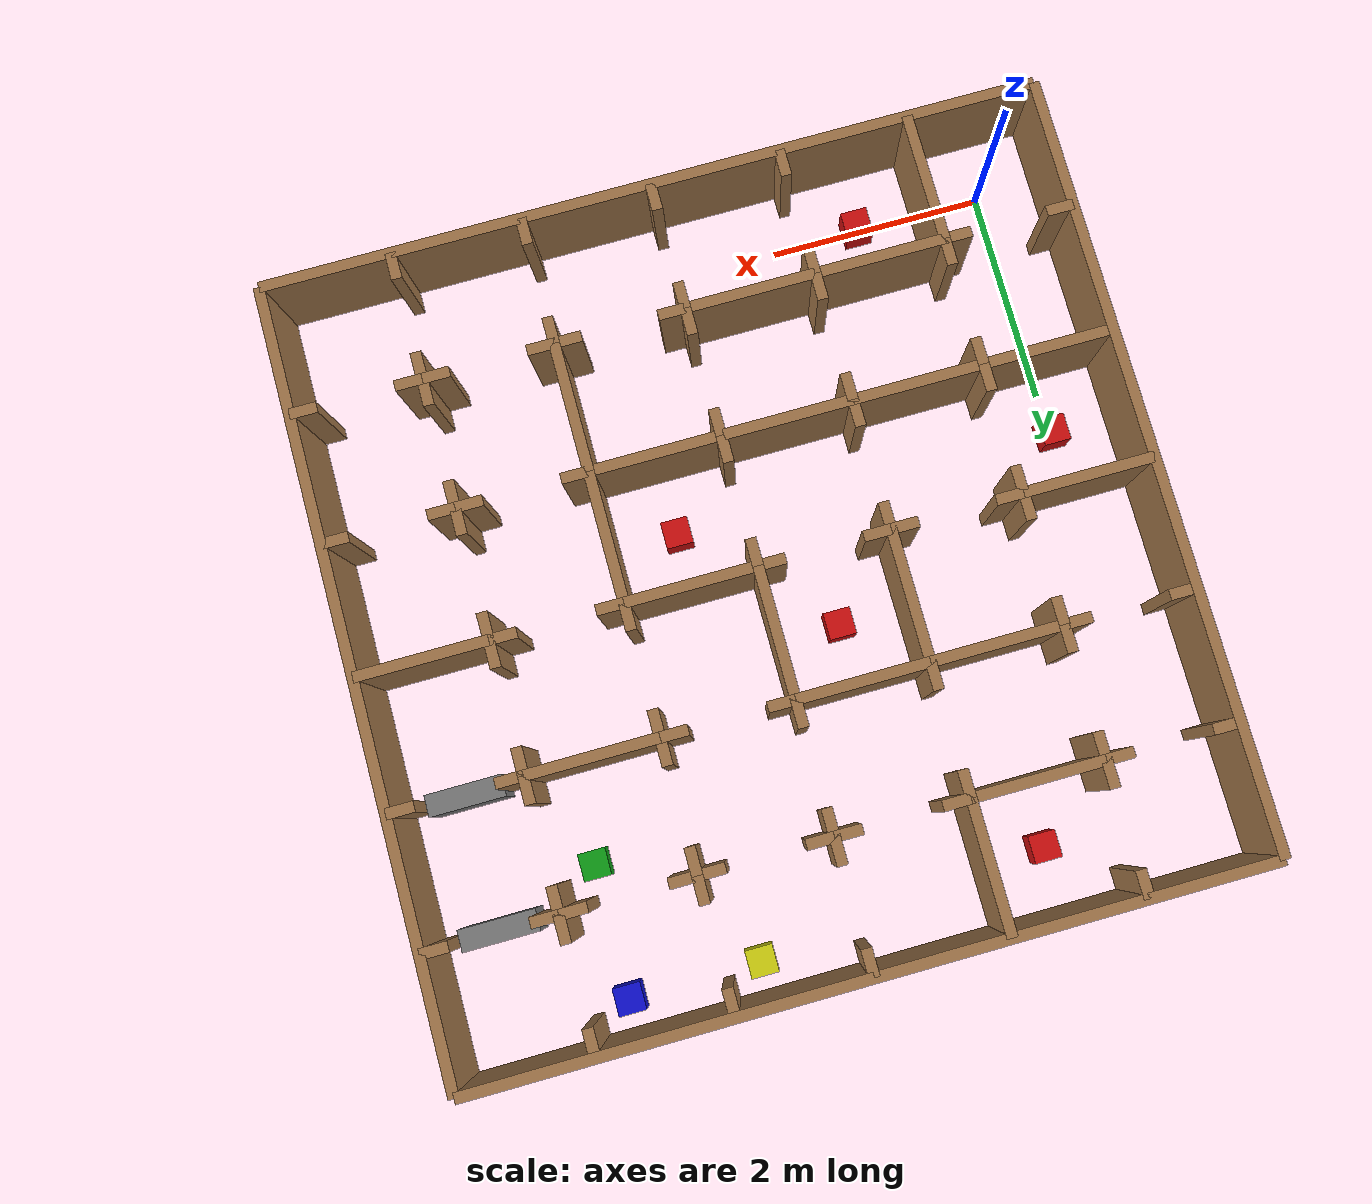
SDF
<sdf version="1.5">
 <world name="tars_nuevo_rodeos">
  <physics type="ode">
   <max_step_size>0.001</max_step_size>
   <real_time_factor>1</real_time_factor>
   <real_time_update_rate>1000</real_time_update_rate>
   <gravity>0 0 -9.8</gravity>
  </physics>
  <plugin filename="gz-sim-physics-system" name="gz::sim::systems::Physics"/>
  <plugin filename="gz-sim-user-commands-system" name="gz::sim::systems::UserCommands"/>
  <plugin filename="gz-sim-scene-broadcaster-system" name="gz::sim::systems::SceneBroadcaster"/>
  <plugin filename="gz-sim-contact-system" name="gz::sim::systems::Contact"/>
  <plugin filename="gz-sim-sensors-system" name="gz::sim::systems::Sensors">
   <render_engine>ogre2</render_engine>
  </plugin>
  <plugin filename="gz-sim-imu-system" name="gz::sim::systems::Imu"/>
  <scene>
   <shadows>false</shadows>
   <ambient>0.2 0.2 0.2 1</ambient>
   <background>1 1 1 1</background>
   <grid>false</grid>
   <origin_visual>false</origin_visual>
  </scene>
  <include><uri>model://sun</uri></include>
  <light name="camera_spot_1_light" type="spot">
   <pose>-6 4 4 0 -1 -0.8</pose>
   <diffuse>0.5 0.5 0.5 1</diffuse>
   <specular>0.1 0.1 0.1 1</specular>
   <direction>0 0 -1</direction>
   <attenuation>
    <range>20</range>
    <constant>0.2</constant>
    <linear>0.01</linear>
    <quadratic>0.001</quadratic>
   </attenuation>
   <cast_shadows>0</cast_shadows>
   <spot><inner_angle>0.6</inner_angle><outer_angle>1</outer_angle><falloff>1</falloff></spot>
  </light>
  <light name="camera_spot_2_light" type="spot">
   <pose>5 -3 4 0 0.8 -0.6</pose>
   <diffuse>0.5 0.5 0.5 1</diffuse>
   <specular>0.1 0.1 0.1 1</specular>
   <direction>0 0 -1</direction>
   <attenuation>
    <range>20</range>
    <constant>0.3</constant>
    <linear>0.01</linear>
    <quadratic>0.001</quadratic>
   </attenuation>
   <cast_shadows>0</cast_shadows>
   <spot><inner_angle>0.6</inner_angle><outer_angle>1</outer_angle><falloff>1</falloff></spot>
  </light>
  <model name="paredes_nuevas">
   <static>true</static>
   <link name="pared_1">
    <pose>3.000000 -0.600000 0.500000 0 0 0.000000000</pose>
    <collision name="collision"><geometry><box><size>7.199999999999999 0.1 1.0</size></box></geometry></collision>
    <visual name="visual">
     <geometry><box><size>7.199999999999999 0.1 1.0</size></box></geometry>
     <material><ambient>0.62 0.45 0.28 1</ambient><diffuse>0.62 0.45 0.28 1</diffuse></material>
    </visual>
   </link>
   <link name="pared_2">
    <pose>6.600000 3.000000 0.500000 0 0 1.570796327</pose>
    <collision name="collision"><geometry><box><size>7.199999999999999 0.1 1.0</size></box></geometry></collision>
    <visual name="visual">
     <geometry><box><size>7.199999999999999 0.1 1.0</size></box></geometry>
     <material><ambient>0.62 0.45 0.28 1</ambient><diffuse>0.62 0.45 0.28 1</diffuse></material>
    </visual>
   </link>
   <link name="pared_3">
    <pose>3.000000 6.600000 0.500000 0 0 3.141592654</pose>
    <collision name="collision"><geometry><box><size>7.199999999999999 0.1 1.0</size></box></geometry></collision>
    <visual name="visual">
     <geometry><box><size>7.199999999999999 0.1 1.0</size></box></geometry>
     <material><ambient>0.62 0.45 0.28 1</ambient><diffuse>0.62 0.45 0.28 1</diffuse></material>
    </visual>
   </link>
   <link name="pared_4">
    <pose>-0.600000 3.000000 0.500000 0 0 -1.570796327</pose>
    <collision name="collision"><geometry><box><size>7.199999999999999 0.1 1.0</size></box></geometry></collision>
    <visual name="visual">
     <geometry><box><size>7.199999999999999 0.1 1.0</size></box></geometry>
     <material><ambient>0.62 0.45 0.28 1</ambient><diffuse>0.62 0.45 0.28 1</diffuse></material>
    </visual>
   </link>
   <link name="pared_5">
    <pose>0.600000 0.000000 0.500000 0 0 1.570796327</pose>
    <collision name="collision"><geometry><box><size>1.2 0.1 1.0</size></box></geometry></collision>
    <visual name="visual">
     <geometry><box><size>1.2 0.1 1.0</size></box></geometry>
     <material><ambient>0.62 0.45 0.28 1</ambient><diffuse>0.62 0.45 0.28 1</diffuse></material>
    </visual>
   </link>
   <link name="pared_6">
    <pose>-0.475000 0.600000 0.500000 0 0 0.000000000</pose>
    <collision name="collision"><geometry><box><size>0.25 0.1 1.0</size></box></geometry></collision>
    <visual name="visual">
     <geometry><box><size>0.25 0.1 1.0</size></box></geometry>
     <material><ambient>0.62 0.45 0.28 1</ambient><diffuse>0.62 0.45 0.28 1</diffuse></material>
    </visual>
   </link>
   <link name="pared_7">
    <pose>0.475000 0.600000 0.500000 0 0 0.000000000</pose>
    <collision name="collision"><geometry><box><size>0.25 0.1 1.0</size></box></geometry></collision>
    <visual name="visual">
     <geometry><box><size>0.25 0.1 1.0</size></box></geometry>
     <material><ambient>0.62 0.45 0.28 1</ambient><diffuse>0.62 0.45 0.28 1</diffuse></material>
    </visual>
   </link>
   <link name="pared_8">
    <pose>0.600000 0.725000 0.500000 0 0 1.570796327</pose>
    <collision name="collision"><geometry><box><size>0.25 0.1 1.0</size></box></geometry></collision>
    <visual name="visual">
     <geometry><box><size>0.25 0.1 1.0</size></box></geometry>
     <material><ambient>0.62 0.45 0.28 1</ambient><diffuse>0.62 0.45 0.28 1</diffuse></material>
    </visual>
   </link>
   <link name="pared_9">
    <pose>0.600000 1.675000 0.500000 0 0 1.570796327</pose>
    <collision name="collision"><geometry><box><size>0.25 0.1 1.0</size></box></geometry></collision>
    <visual name="visual">
     <geometry><box><size>0.25 0.1 1.0</size></box></geometry>
     <material><ambient>0.62 0.45 0.28 1</ambient><diffuse>0.62 0.45 0.28 1</diffuse></material>
    </visual>
   </link>
   <link name="pared_10">
    <pose>0.000000 1.800000 0.500000 0 0 0.000000000</pose>
    <collision name="collision"><geometry><box><size>1.2 0.1 1.0</size></box></geometry></collision>
    <visual name="visual">
     <geometry><box><size>1.2 0.1 1.0</size></box></geometry>
     <material><ambient>0.62 0.45 0.28 1</ambient><diffuse>0.62 0.45 0.28 1</diffuse></material>
    </visual>
   </link>
   <link name="pared_11">
    <pose>0.600000 1.925000 0.500000 0 0 1.570796327</pose>
    <collision name="collision"><geometry><box><size>0.25 0.1 1.0</size></box></geometry></collision>
    <visual name="visual">
     <geometry><box><size>0.25 0.1 1.0</size></box></geometry>
     <material><ambient>0.62 0.45 0.28 1</ambient><diffuse>0.62 0.45 0.28 1</diffuse></material>
    </visual>
   </link>
   <link name="pared_12">
    <pose>0.600000 2.875000 0.500000 0 0 1.570796327</pose>
    <collision name="collision"><geometry><box><size>0.25 0.1 1.0</size></box></geometry></collision>
    <visual name="visual">
     <geometry><box><size>0.25 0.1 1.0</size></box></geometry>
     <material><ambient>0.62 0.45 0.28 1</ambient><diffuse>0.62 0.45 0.28 1</diffuse></material>
    </visual>
   </link>
   <link name="pared_13">
    <pose>0.000000 3.000000 0.500000 0 0 0.000000000</pose>
    <collision name="collision"><geometry><box><size>1.2 0.1 1.0</size></box></geometry></collision>
    <visual name="visual">
     <geometry><box><size>1.2 0.1 1.0</size></box></geometry>
     <material><ambient>0.62 0.45 0.28 1</ambient><diffuse>0.62 0.45 0.28 1</diffuse></material>
    </visual>
   </link>
   <link name="pared_14">
    <pose>0.600000 3.125000 0.500000 0 0 1.570796327</pose>
    <collision name="collision"><geometry><box><size>0.25 0.1 1.0</size></box></geometry></collision>
    <visual name="visual">
     <geometry><box><size>0.25 0.1 1.0</size></box></geometry>
     <material><ambient>0.62 0.45 0.28 1</ambient><diffuse>0.62 0.45 0.28 1</diffuse></material>
    </visual>
   </link>
   <link name="pared_15">
    <pose>0.600000 4.075000 0.500000 0 0 1.570796327</pose>
    <collision name="collision">
     <geometry><box><size>0.24999999999999956 0.1 1.0</size></box></geometry>
    </collision>
    <visual name="visual">
     <geometry><box><size>0.24999999999999956 0.1 1.0</size></box></geometry>
     <material><ambient>0.62 0.45 0.28 1</ambient><diffuse>0.62 0.45 0.28 1</diffuse></material>
    </visual>
   </link>
   <link name="pared_16">
    <pose>-0.475000 4.200000 0.500000 0 0 0.000000000</pose>
    <collision name="collision"><geometry><box><size>0.25 0.1 1.0</size></box></geometry></collision>
    <visual name="visual">
     <geometry><box><size>0.25 0.1 1.0</size></box></geometry>
     <material><ambient>0.62 0.45 0.28 1</ambient><diffuse>0.62 0.45 0.28 1</diffuse></material>
    </visual>
   </link>
   <link name="pared_17">
    <pose>0.475000 4.200000 0.500000 0 0 0.000000000</pose>
    <collision name="collision"><geometry><box><size>0.25 0.1 1.0</size></box></geometry></collision>
    <visual name="visual">
     <geometry><box><size>0.25 0.1 1.0</size></box></geometry>
     <material><ambient>0.62 0.45 0.28 1</ambient><diffuse>0.62 0.45 0.28 1</diffuse></material>
    </visual>
   </link>
   <link name="pared_18">
    <pose>0.600000 4.325000 0.500000 0 0 1.570796327</pose>
    <collision name="collision"><geometry><box><size>0.25 0.1 1.0</size></box></geometry></collision>
    <visual name="visual">
     <geometry><box><size>0.25 0.1 1.0</size></box></geometry>
     <material><ambient>0.62 0.45 0.28 1</ambient><diffuse>0.62 0.45 0.28 1</diffuse></material>
    </visual>
   </link>
   <link name="pared_19">
    <pose>0.600000 5.275000 0.500000 0 0 1.570796327</pose>
    <collision name="collision"><geometry><box><size>0.25 0.1 1.0</size></box></geometry></collision>
    <visual name="visual">
     <geometry><box><size>0.25 0.1 1.0</size></box></geometry>
     <material><ambient>0.62 0.45 0.28 1</ambient><diffuse>0.62 0.45 0.28 1</diffuse></material>
    </visual>
   </link>
   <link name="pared_20">
    <pose>-0.475000 5.400000 0.500000 0 0 0.000000000</pose>
    <collision name="collision"><geometry><box><size>0.25 0.1 1.0</size></box></geometry></collision>
    <visual name="visual">
     <geometry><box><size>0.25 0.1 1.0</size></box></geometry>
     <material><ambient>0.62 0.45 0.28 1</ambient><diffuse>0.62 0.45 0.28 1</diffuse></material>
    </visual>
   </link>
   <link name="pared_21">
    <pose>0.475000 5.400000 0.500000 0 0 0.000000000</pose>
    <collision name="collision"><geometry><box><size>0.25 0.1 1.0</size></box></geometry></collision>
    <visual name="visual">
     <geometry><box><size>0.25 0.1 1.0</size></box></geometry>
     <material><ambient>0.62 0.45 0.28 1</ambient><diffuse>0.62 0.45 0.28 1</diffuse></material>
    </visual>
   </link>
   <link name="pared_22">
    <pose>0.600000 5.525000 0.500000 0 0 1.570796327</pose>
    <collision name="collision"><geometry><box><size>0.25 0.1 1.0</size></box></geometry></collision>
    <visual name="visual">
     <geometry><box><size>0.25 0.1 1.0</size></box></geometry>
     <material><ambient>0.62 0.45 0.28 1</ambient><diffuse>0.62 0.45 0.28 1</diffuse></material>
    </visual>
   </link>
   <link name="pared_23">
    <pose>0.600000 6.475000 0.500000 0 0 1.570796327</pose>
    <collision name="collision"><geometry><box><size>0.25 0.1 1.0</size></box></geometry></collision>
    <visual name="visual">
     <geometry><box><size>0.25 0.1 1.0</size></box></geometry>
     <material><ambient>0.62 0.45 0.28 1</ambient><diffuse>0.62 0.45 0.28 1</diffuse></material>
    </visual>
   </link>
   <link name="pared_24">
    <pose>1.800000 -0.475000 0.500000 0 0 1.570796327</pose>
    <collision name="collision"><geometry><box><size>0.25 0.1 1.0</size></box></geometry></collision>
    <visual name="visual">
     <geometry><box><size>0.25 0.1 1.0</size></box></geometry>
     <material><ambient>0.62 0.45 0.28 1</ambient><diffuse>0.62 0.45 0.28 1</diffuse></material>
    </visual>
   </link>
   <link name="pared_25">
    <pose>1.800000 0.475000 0.500000 0 0 1.570796327</pose>
    <collision name="collision"><geometry><box><size>0.25 0.1 1.0</size></box></geometry></collision>
    <visual name="visual">
     <geometry><box><size>0.25 0.1 1.0</size></box></geometry>
     <material><ambient>0.62 0.45 0.28 1</ambient><diffuse>0.62 0.45 0.28 1</diffuse></material>
    </visual>
   </link>
   <link name="pared_26">
    <pose>1.200000 0.600000 0.500000 0 0 0.000000000</pose>
    <collision name="collision">
     <geometry><box><size>1.1999999999999997 0.1 1.0</size></box></geometry>
    </collision>
    <visual name="visual">
     <geometry><box><size>1.1999999999999997 0.1 1.0</size></box></geometry>
     <material><ambient>0.62 0.45 0.28 1</ambient><diffuse>0.62 0.45 0.28 1</diffuse></material>
    </visual>
   </link>
   <link name="pared_27">
    <pose>1.800000 0.725000 0.500000 0 0 1.570796327</pose>
    <collision name="collision"><geometry><box><size>0.25 0.1 1.0</size></box></geometry></collision>
    <visual name="visual">
     <geometry><box><size>0.25 0.1 1.0</size></box></geometry>
     <material><ambient>0.62 0.45 0.28 1</ambient><diffuse>0.62 0.45 0.28 1</diffuse></material>
    </visual>
   </link>
   <link name="pared_28">
    <pose>1.800000 1.675000 0.500000 0 0 1.570796327</pose>
    <collision name="collision"><geometry><box><size>0.25 0.1 1.0</size></box></geometry></collision>
    <visual name="visual">
     <geometry><box><size>0.25 0.1 1.0</size></box></geometry>
     <material><ambient>0.62 0.45 0.28 1</ambient><diffuse>0.62 0.45 0.28 1</diffuse></material>
    </visual>
   </link>
   <link name="pared_29">
    <pose>1.200000 1.800000 0.500000 0 0 0.000000000</pose>
    <collision name="collision">
     <geometry><box><size>1.1999999999999997 0.1 1.0</size></box></geometry>
    </collision>
    <visual name="visual">
     <geometry><box><size>1.1999999999999997 0.1 1.0</size></box></geometry>
     <material><ambient>0.62 0.45 0.28 1</ambient><diffuse>0.62 0.45 0.28 1</diffuse></material>
    </visual>
   </link>
   <link name="pared_30">
    <pose>1.800000 1.925000 0.500000 0 0 1.570796327</pose>
    <collision name="collision"><geometry><box><size>0.25 0.1 1.0</size></box></geometry></collision>
    <visual name="visual">
     <geometry><box><size>0.25 0.1 1.0</size></box></geometry>
     <material><ambient>0.62 0.45 0.28 1</ambient><diffuse>0.62 0.45 0.28 1</diffuse></material>
    </visual>
   </link>
   <link name="pared_31">
    <pose>1.800000 2.875000 0.500000 0 0 1.570796327</pose>
    <collision name="collision"><geometry><box><size>0.25 0.1 1.0</size></box></geometry></collision>
    <visual name="visual">
     <geometry><box><size>0.25 0.1 1.0</size></box></geometry>
     <material><ambient>0.62 0.45 0.28 1</ambient><diffuse>0.62 0.45 0.28 1</diffuse></material>
    </visual>
   </link>
   <link name="pared_32">
    <pose>0.725000 3.000000 0.500000 0 0 0.000000000</pose>
    <collision name="collision"><geometry><box><size>0.25 0.1 1.0</size></box></geometry></collision>
    <visual name="visual">
     <geometry><box><size>0.25 0.1 1.0</size></box></geometry>
     <material><ambient>0.62 0.45 0.28 1</ambient><diffuse>0.62 0.45 0.28 1</diffuse></material>
    </visual>
   </link>
   <link name="pared_33">
    <pose>1.675000 3.000000 0.500000 0 0 0.000000000</pose>
    <collision name="collision"><geometry><box><size>0.25 0.1 1.0</size></box></geometry></collision>
    <visual name="visual">
     <geometry><box><size>0.25 0.1 1.0</size></box></geometry>
     <material><ambient>0.62 0.45 0.28 1</ambient><diffuse>0.62 0.45 0.28 1</diffuse></material>
    </visual>
   </link>
   <link name="pared_34">
    <pose>1.800000 3.600000 0.500000 0 0 1.570796327</pose>
    <collision name="collision">
     <geometry><box><size>1.1999999999999997 0.1 1.0</size></box></geometry>
    </collision>
    <visual name="visual">
     <geometry><box><size>1.1999999999999997 0.1 1.0</size></box></geometry>
     <material><ambient>0.62 0.45 0.28 1</ambient><diffuse>0.62 0.45 0.28 1</diffuse></material>
    </visual>
   </link>
   <link name="pared_35">
    <pose>1.200000 4.200000 0.500000 0 0 0.000000000</pose>
    <collision name="collision">
     <geometry><box><size>1.1999999999999997 0.1 1.0</size></box></geometry>
    </collision>
    <visual name="visual">
     <geometry><box><size>1.1999999999999997 0.1 1.0</size></box></geometry>
     <material><ambient>0.62 0.45 0.28 1</ambient><diffuse>0.62 0.45 0.28 1</diffuse></material>
    </visual>
   </link>
   <link name="pared_36">
    <pose>1.800000 4.325000 0.500000 0 0 1.570796327</pose>
    <collision name="collision"><geometry><box><size>0.25 0.1 1.0</size></box></geometry></collision>
    <visual name="visual">
     <geometry><box><size>0.25 0.1 1.0</size></box></geometry>
     <material><ambient>0.62 0.45 0.28 1</ambient><diffuse>0.62 0.45 0.28 1</diffuse></material>
    </visual>
   </link>
   <link name="pared_37">
    <pose>1.800000 5.275000 0.500000 0 0 1.570796327</pose>
    <collision name="collision"><geometry><box><size>0.25 0.1 1.0</size></box></geometry></collision>
    <visual name="visual">
     <geometry><box><size>0.25 0.1 1.0</size></box></geometry>
     <material><ambient>0.62 0.45 0.28 1</ambient><diffuse>0.62 0.45 0.28 1</diffuse></material>
    </visual>
   </link>
   <link name="pared_38">
    <pose>1.200000 5.400000 0.500000 0 0 0.000000000</pose>
    <collision name="collision">
     <geometry><box><size>1.1999999999999997 0.1 1.0</size></box></geometry>
    </collision>
    <visual name="visual">
     <geometry><box><size>1.1999999999999997 0.1 1.0</size></box></geometry>
     <material><ambient>0.62 0.45 0.28 1</ambient><diffuse>0.62 0.45 0.28 1</diffuse></material>
    </visual>
   </link>
   <link name="pared_39">
    <pose>1.800000 6.000000 0.500000 0 0 1.570796327</pose>
    <collision name="collision">
     <geometry><box><size>1.1999999999999993 0.1 1.0</size></box></geometry>
    </collision>
    <visual name="visual">
     <geometry><box><size>1.1999999999999993 0.1 1.0</size></box></geometry>
     <material><ambient>0.62 0.45 0.28 1</ambient><diffuse>0.62 0.45 0.28 1</diffuse></material>
    </visual>
   </link>
   <link name="pared_40">
    <pose>3.000000 -0.475000 0.500000 0 0 1.570796327</pose>
    <collision name="collision"><geometry><box><size>0.25 0.1 1.0</size></box></geometry></collision>
    <visual name="visual">
     <geometry><box><size>0.25 0.1 1.0</size></box></geometry>
     <material><ambient>0.62 0.45 0.28 1</ambient><diffuse>0.62 0.45 0.28 1</diffuse></material>
    </visual>
   </link>
   <link name="pared_41">
    <pose>3.000000 0.475000 0.500000 0 0 1.570796327</pose>
    <collision name="collision"><geometry><box><size>0.25 0.1 1.0</size></box></geometry></collision>
    <visual name="visual">
     <geometry><box><size>0.25 0.1 1.0</size></box></geometry>
     <material><ambient>0.62 0.45 0.28 1</ambient><diffuse>0.62 0.45 0.28 1</diffuse></material>
    </visual>
   </link>
   <link name="pared_42">
    <pose>2.400000 0.600000 0.500000 0 0 0.000000000</pose>
    <collision name="collision">
     <geometry><box><size>1.2000000000000002 0.1 1.0</size></box></geometry>
    </collision>
    <visual name="visual">
     <geometry><box><size>1.2000000000000002 0.1 1.0</size></box></geometry>
     <material><ambient>0.62 0.45 0.28 1</ambient><diffuse>0.62 0.45 0.28 1</diffuse></material>
    </visual>
   </link>
   <link name="pared_43">
    <pose>3.000000 0.725000 0.500000 0 0 1.570796327</pose>
    <collision name="collision"><geometry><box><size>0.25 0.1 1.0</size></box></geometry></collision>
    <visual name="visual">
     <geometry><box><size>0.25 0.1 1.0</size></box></geometry>
     <material><ambient>0.62 0.45 0.28 1</ambient><diffuse>0.62 0.45 0.28 1</diffuse></material>
    </visual>
   </link>
   <link name="pared_44">
    <pose>3.000000 1.675000 0.500000 0 0 1.570796327</pose>
    <collision name="collision"><geometry><box><size>0.25 0.1 1.0</size></box></geometry></collision>
    <visual name="visual">
     <geometry><box><size>0.25 0.1 1.0</size></box></geometry>
     <material><ambient>0.62 0.45 0.28 1</ambient><diffuse>0.62 0.45 0.28 1</diffuse></material>
    </visual>
   </link>
   <link name="pared_45">
    <pose>2.400000 1.800000 0.500000 0 0 0.000000000</pose>
    <collision name="collision">
     <geometry><box><size>1.2000000000000002 0.1 1.0</size></box></geometry>
    </collision>
    <visual name="visual">
     <geometry><box><size>1.2000000000000002 0.1 1.0</size></box></geometry>
     <material><ambient>0.62 0.45 0.28 1</ambient><diffuse>0.62 0.45 0.28 1</diffuse></material>
    </visual>
   </link>
   <link name="pared_46">
    <pose>3.000000 1.925000 0.500000 0 0 1.570796327</pose>
    <collision name="collision"><geometry><box><size>0.25 0.1 1.0</size></box></geometry></collision>
    <visual name="visual">
     <geometry><box><size>0.25 0.1 1.0</size></box></geometry>
     <material><ambient>0.62 0.45 0.28 1</ambient><diffuse>0.62 0.45 0.28 1</diffuse></material>
    </visual>
   </link>
   <link name="pared_47">
    <pose>3.000000 2.875000 0.500000 0 0 1.570796327</pose>
    <collision name="collision"><geometry><box><size>0.25 0.1 1.0</size></box></geometry></collision>
    <visual name="visual">
     <geometry><box><size>0.25 0.1 1.0</size></box></geometry>
     <material><ambient>0.62 0.45 0.28 1</ambient><diffuse>0.62 0.45 0.28 1</diffuse></material>
    </visual>
   </link>
   <link name="pared_48">
    <pose>1.925000 3.000000 0.500000 0 0 0.000000000</pose>
    <collision name="collision"><geometry><box><size>0.25 0.1 1.0</size></box></geometry></collision>
    <visual name="visual">
     <geometry><box><size>0.25 0.1 1.0</size></box></geometry>
     <material><ambient>0.62 0.45 0.28 1</ambient><diffuse>0.62 0.45 0.28 1</diffuse></material>
    </visual>
   </link>
   <link name="pared_49">
    <pose>2.875000 3.000000 0.500000 0 0 0.000000000</pose>
    <collision name="collision"><geometry><box><size>0.25 0.1 1.0</size></box></geometry></collision>
    <visual name="visual">
     <geometry><box><size>0.25 0.1 1.0</size></box></geometry>
     <material><ambient>0.62 0.45 0.28 1</ambient><diffuse>0.62 0.45 0.28 1</diffuse></material>
    </visual>
   </link>
   <link name="pared_50">
    <pose>3.000000 3.600000 0.500000 0 0 1.570796327</pose>
    <collision name="collision">
     <geometry><box><size>1.1999999999999997 0.1 1.0</size></box></geometry>
    </collision>
    <visual name="visual">
     <geometry><box><size>1.1999999999999997 0.1 1.0</size></box></geometry>
     <material><ambient>0.62 0.45 0.28 1</ambient><diffuse>0.62 0.45 0.28 1</diffuse></material>
    </visual>
   </link>
   <link name="pared_51">
    <pose>2.400000 4.200000 0.500000 0 0 0.000000000</pose>
    <collision name="collision">
     <geometry><box><size>1.2000000000000002 0.1 1.0</size></box></geometry>
    </collision>
    <visual name="visual">
     <geometry><box><size>1.2000000000000002 0.1 1.0</size></box></geometry>
     <material><ambient>0.62 0.45 0.28 1</ambient><diffuse>0.62 0.45 0.28 1</diffuse></material>
    </visual>
   </link>
   <link name="pared_52">
    <pose>3.000000 4.325000 0.500000 0 0 1.570796327</pose>
    <collision name="collision"><geometry><box><size>0.25 0.1 1.0</size></box></geometry></collision>
    <visual name="visual">
     <geometry><box><size>0.25 0.1 1.0</size></box></geometry>
     <material><ambient>0.62 0.45 0.28 1</ambient><diffuse>0.62 0.45 0.28 1</diffuse></material>
    </visual>
   </link>
   <link name="pared_53">
    <pose>3.000000 5.275000 0.500000 0 0 1.570796327</pose>
    <collision name="collision"><geometry><box><size>0.25 0.1 1.0</size></box></geometry></collision>
    <visual name="visual">
     <geometry><box><size>0.25 0.1 1.0</size></box></geometry>
     <material><ambient>0.62 0.45 0.28 1</ambient><diffuse>0.62 0.45 0.28 1</diffuse></material>
    </visual>
   </link>
   <link name="pared_54">
    <pose>1.925000 5.400000 0.500000 0 0 0.000000000</pose>
    <collision name="collision"><geometry><box><size>0.25 0.1 1.0</size></box></geometry></collision>
    <visual name="visual">
     <geometry><box><size>0.25 0.1 1.0</size></box></geometry>
     <material><ambient>0.62 0.45 0.28 1</ambient><diffuse>0.62 0.45 0.28 1</diffuse></material>
    </visual>
   </link>
   <link name="pared_55">
    <pose>2.875000 5.400000 0.500000 0 0 0.000000000</pose>
    <collision name="collision"><geometry><box><size>0.25 0.1 1.0</size></box></geometry></collision>
    <visual name="visual">
     <geometry><box><size>0.25 0.1 1.0</size></box></geometry>
     <material><ambient>0.62 0.45 0.28 1</ambient><diffuse>0.62 0.45 0.28 1</diffuse></material>
    </visual>
   </link>
   <link name="pared_56">
    <pose>3.000000 5.525000 0.500000 0 0 1.570796327</pose>
    <collision name="collision"><geometry><box><size>0.25 0.1 1.0</size></box></geometry></collision>
    <visual name="visual">
     <geometry><box><size>0.25 0.1 1.0</size></box></geometry>
     <material><ambient>0.62 0.45 0.28 1</ambient><diffuse>0.62 0.45 0.28 1</diffuse></material>
    </visual>
   </link>
   <link name="pared_57">
    <pose>3.000000 6.475000 0.500000 0 0 1.570796327</pose>
    <collision name="collision"><geometry><box><size>0.25 0.1 1.0</size></box></geometry></collision>
    <visual name="visual">
     <geometry><box><size>0.25 0.1 1.0</size></box></geometry>
     <material><ambient>0.62 0.45 0.28 1</ambient><diffuse>0.62 0.45 0.28 1</diffuse></material>
    </visual>
   </link>
   <link name="pared_58">
    <pose>4.200000 -0.475000 0.500000 0 0 1.570796327</pose>
    <collision name="collision"><geometry><box><size>0.25 0.1 1.0</size></box></geometry></collision>
    <visual name="visual">
     <geometry><box><size>0.25 0.1 1.0</size></box></geometry>
     <material><ambient>0.62 0.45 0.28 1</ambient><diffuse>0.62 0.45 0.28 1</diffuse></material>
    </visual>
   </link>
   <link name="pared_59">
    <pose>4.200000 0.475000 0.500000 0 0 1.570796327</pose>
    <collision name="collision"><geometry><box><size>0.25 0.1 1.0</size></box></geometry></collision>
    <visual name="visual">
     <geometry><box><size>0.25 0.1 1.0</size></box></geometry>
     <material><ambient>0.62 0.45 0.28 1</ambient><diffuse>0.62 0.45 0.28 1</diffuse></material>
    </visual>
   </link>
   <link name="pared_60">
    <pose>3.125000 0.600000 0.500000 0 0 0.000000000</pose>
    <collision name="collision"><geometry><box><size>0.25 0.1 1.0</size></box></geometry></collision>
    <visual name="visual">
     <geometry><box><size>0.25 0.1 1.0</size></box></geometry>
     <material><ambient>0.62 0.45 0.28 1</ambient><diffuse>0.62 0.45 0.28 1</diffuse></material>
    </visual>
   </link>
   <link name="pared_61">
    <pose>4.075000 0.600000 0.500000 0 0 0.000000000</pose>
    <collision name="collision">
     <geometry><box><size>0.24999999999999956 0.1 1.0</size></box></geometry>
    </collision>
    <visual name="visual">
     <geometry><box><size>0.24999999999999956 0.1 1.0</size></box></geometry>
     <material><ambient>0.62 0.45 0.28 1</ambient><diffuse>0.62 0.45 0.28 1</diffuse></material>
    </visual>
   </link>
   <link name="pared_62">
    <pose>4.200000 1.200000 0.500000 0 0 1.570796327</pose>
    <collision name="collision">
     <geometry><box><size>1.1999999999999997 0.1 1.0</size></box></geometry>
    </collision>
    <visual name="visual">
     <geometry><box><size>1.1999999999999997 0.1 1.0</size></box></geometry>
     <material><ambient>0.62 0.45 0.28 1</ambient><diffuse>0.62 0.45 0.28 1</diffuse></material>
    </visual>
   </link>
   <link name="pared_63">
    <pose>3.600000 1.800000 0.500000 0 0 0.000000000</pose>
    <collision name="collision">
     <geometry><box><size>1.1999999999999997 0.1 1.0</size></box></geometry>
    </collision>
    <visual name="visual">
     <geometry><box><size>1.1999999999999997 0.1 1.0</size></box></geometry>
     <material><ambient>0.62 0.45 0.28 1</ambient><diffuse>0.62 0.45 0.28 1</diffuse></material>
    </visual>
   </link>
   <link name="pared_64">
    <pose>4.200000 2.400000 0.500000 0 0 1.570796327</pose>
    <collision name="collision">
     <geometry><box><size>1.2000000000000002 0.1 1.0</size></box></geometry>
    </collision>
    <visual name="visual">
     <geometry><box><size>1.2000000000000002 0.1 1.0</size></box></geometry>
     <material><ambient>0.62 0.45 0.28 1</ambient><diffuse>0.62 0.45 0.28 1</diffuse></material>
    </visual>
   </link>
   <link name="pared_65">
    <pose>3.600000 3.000000 0.500000 0 0 0.000000000</pose>
    <collision name="collision">
     <geometry><box><size>1.1999999999999997 0.1 1.0</size></box></geometry>
    </collision>
    <visual name="visual">
     <geometry><box><size>1.1999999999999997 0.1 1.0</size></box></geometry>
     <material><ambient>0.62 0.45 0.28 1</ambient><diffuse>0.62 0.45 0.28 1</diffuse></material>
    </visual>
   </link>
   <link name="pared_66">
    <pose>4.200000 3.125000 0.500000 0 0 1.570796327</pose>
    <collision name="collision"><geometry><box><size>0.25 0.1 1.0</size></box></geometry></collision>
    <visual name="visual">
     <geometry><box><size>0.25 0.1 1.0</size></box></geometry>
     <material><ambient>0.62 0.45 0.28 1</ambient><diffuse>0.62 0.45 0.28 1</diffuse></material>
    </visual>
   </link>
   <link name="pared_67">
    <pose>4.200000 4.075000 0.500000 0 0 1.570796327</pose>
    <collision name="collision">
     <geometry><box><size>0.24999999999999956 0.1 1.0</size></box></geometry>
    </collision>
    <visual name="visual">
     <geometry><box><size>0.24999999999999956 0.1 1.0</size></box></geometry>
     <material><ambient>0.62 0.45 0.28 1</ambient><diffuse>0.62 0.45 0.28 1</diffuse></material>
    </visual>
   </link>
   <link name="pared_68">
    <pose>3.125000 4.200000 0.500000 0 0 0.000000000</pose>
    <collision name="collision"><geometry><box><size>0.25 0.1 1.0</size></box></geometry></collision>
    <visual name="visual">
     <geometry><box><size>0.25 0.1 1.0</size></box></geometry>
     <material><ambient>0.62 0.45 0.28 1</ambient><diffuse>0.62 0.45 0.28 1</diffuse></material>
    </visual>
   </link>
   <link name="pared_69">
    <pose>4.075000 4.200000 0.500000 0 0 0.000000000</pose>
    <collision name="collision">
     <geometry><box><size>0.24999999999999956 0.1 1.0</size></box></geometry>
    </collision>
    <visual name="visual">
     <geometry><box><size>0.24999999999999956 0.1 1.0</size></box></geometry>
     <material><ambient>0.62 0.45 0.28 1</ambient><diffuse>0.62 0.45 0.28 1</diffuse></material>
    </visual>
   </link>
   <link name="pared_70">
    <pose>4.200000 4.325000 0.500000 0 0 1.570796327</pose>
    <collision name="collision"><geometry><box><size>0.25 0.1 1.0</size></box></geometry></collision>
    <visual name="visual">
     <geometry><box><size>0.25 0.1 1.0</size></box></geometry>
     <material><ambient>0.62 0.45 0.28 1</ambient><diffuse>0.62 0.45 0.28 1</diffuse></material>
    </visual>
   </link>
   <link name="pared_71">
    <pose>4.200000 5.275000 0.500000 0 0 1.570796327</pose>
    <collision name="collision"><geometry><box><size>0.25 0.1 1.0</size></box></geometry></collision>
    <visual name="visual">
     <geometry><box><size>0.25 0.1 1.0</size></box></geometry>
     <material><ambient>0.62 0.45 0.28 1</ambient><diffuse>0.62 0.45 0.28 1</diffuse></material>
    </visual>
   </link>
   <link name="pared_72">
    <pose>3.125000 5.400000 0.500000 0 0 0.000000000</pose>
    <collision name="collision"><geometry><box><size>0.25 0.1 1.0</size></box></geometry></collision>
    <visual name="visual">
     <geometry><box><size>0.25 0.1 1.0</size></box></geometry>
     <material><ambient>0.62 0.45 0.28 1</ambient><diffuse>0.62 0.45 0.28 1</diffuse></material>
    </visual>
   </link>
   <link name="pared_73">
    <pose>4.075000 5.400000 0.500000 0 0 0.000000000</pose>
    <collision name="collision">
     <geometry><box><size>0.24999999999999956 0.1 1.0</size></box></geometry>
    </collision>
    <visual name="visual">
     <geometry><box><size>0.24999999999999956 0.1 1.0</size></box></geometry>
     <material><ambient>0.62 0.45 0.28 1</ambient><diffuse>0.62 0.45 0.28 1</diffuse></material>
    </visual>
   </link>
   <link name="pared_74">
    <pose>4.200000 5.525000 0.500000 0 0 1.570796327</pose>
    <collision name="collision"><geometry><box><size>0.25 0.1 1.0</size></box></geometry></collision>
    <visual name="visual">
     <geometry><box><size>0.25 0.1 1.0</size></box></geometry>
     <material><ambient>0.62 0.45 0.28 1</ambient><diffuse>0.62 0.45 0.28 1</diffuse></material>
    </visual>
   </link>
   <link name="pared_75">
    <pose>4.200000 6.475000 0.500000 0 0 1.570796327</pose>
    <collision name="collision"><geometry><box><size>0.25 0.1 1.0</size></box></geometry></collision>
    <visual name="visual">
     <geometry><box><size>0.25 0.1 1.0</size></box></geometry>
     <material><ambient>0.62 0.45 0.28 1</ambient><diffuse>0.62 0.45 0.28 1</diffuse></material>
    </visual>
   </link>
   <link name="pared_76">
    <pose>5.400000 -0.475000 0.500000 0 0 1.570796327</pose>
    <collision name="collision"><geometry><box><size>0.25 0.1 1.0</size></box></geometry></collision>
    <visual name="visual">
     <geometry><box><size>0.25 0.1 1.0</size></box></geometry>
     <material><ambient>0.62 0.45 0.28 1</ambient><diffuse>0.62 0.45 0.28 1</diffuse></material>
    </visual>
   </link>
   <link name="pared_77">
    <pose>5.400000 0.475000 0.500000 0 0 1.570796327</pose>
    <collision name="collision"><geometry><box><size>0.25 0.1 1.0</size></box></geometry></collision>
    <visual name="visual">
     <geometry><box><size>0.25 0.1 1.0</size></box></geometry>
     <material><ambient>0.62 0.45 0.28 1</ambient><diffuse>0.62 0.45 0.28 1</diffuse></material>
    </visual>
   </link>
   <link name="pared_78">
    <pose>4.325000 0.600000 0.500000 0 0 0.000000000</pose>
    <collision name="collision"><geometry><box><size>0.25 0.1 1.0</size></box></geometry></collision>
    <visual name="visual">
     <geometry><box><size>0.25 0.1 1.0</size></box></geometry>
     <material><ambient>0.62 0.45 0.28 1</ambient><diffuse>0.62 0.45 0.28 1</diffuse></material>
    </visual>
   </link>
   <link name="pared_79">
    <pose>5.275000 0.600000 0.500000 0 0 0.000000000</pose>
    <collision name="collision"><geometry><box><size>0.25 0.1 1.0</size></box></geometry></collision>
    <visual name="visual">
     <geometry><box><size>0.25 0.1 1.0</size></box></geometry>
     <material><ambient>0.62 0.45 0.28 1</ambient><diffuse>0.62 0.45 0.28 1</diffuse></material>
    </visual>
   </link>
   <link name="pared_80">
    <pose>5.400000 0.725000 0.500000 0 0 1.570796327</pose>
    <collision name="collision"><geometry><box><size>0.25 0.1 1.0</size></box></geometry></collision>
    <visual name="visual">
     <geometry><box><size>0.25 0.1 1.0</size></box></geometry>
     <material><ambient>0.62 0.45 0.28 1</ambient><diffuse>0.62 0.45 0.28 1</diffuse></material>
    </visual>
   </link>
   <link name="pared_81">
    <pose>5.400000 1.675000 0.500000 0 0 1.570796327</pose>
    <collision name="collision"><geometry><box><size>0.25 0.1 1.0</size></box></geometry></collision>
    <visual name="visual">
     <geometry><box><size>0.25 0.1 1.0</size></box></geometry>
     <material><ambient>0.62 0.45 0.28 1</ambient><diffuse>0.62 0.45 0.28 1</diffuse></material>
    </visual>
   </link>
   <link name="pared_82">
    <pose>4.325000 1.800000 0.500000 0 0 0.000000000</pose>
    <collision name="collision"><geometry><box><size>0.25 0.1 1.0</size></box></geometry></collision>
    <visual name="visual">
     <geometry><box><size>0.25 0.1 1.0</size></box></geometry>
     <material><ambient>0.62 0.45 0.28 1</ambient><diffuse>0.62 0.45 0.28 1</diffuse></material>
    </visual>
   </link>
   <link name="pared_83">
    <pose>5.275000 1.800000 0.500000 0 0 0.000000000</pose>
    <collision name="collision"><geometry><box><size>0.25 0.1 1.0</size></box></geometry></collision>
    <visual name="visual">
     <geometry><box><size>0.25 0.1 1.0</size></box></geometry>
     <material><ambient>0.62 0.45 0.28 1</ambient><diffuse>0.62 0.45 0.28 1</diffuse></material>
    </visual>
   </link>
   <link name="pared_84">
    <pose>5.400000 1.925000 0.500000 0 0 1.570796327</pose>
    <collision name="collision"><geometry><box><size>0.25 0.1 1.0</size></box></geometry></collision>
    <visual name="visual">
     <geometry><box><size>0.25 0.1 1.0</size></box></geometry>
     <material><ambient>0.62 0.45 0.28 1</ambient><diffuse>0.62 0.45 0.28 1</diffuse></material>
    </visual>
   </link>
   <link name="pared_85">
    <pose>5.400000 2.875000 0.500000 0 0 1.570796327</pose>
    <collision name="collision"><geometry><box><size>0.25 0.1 1.0</size></box></geometry></collision>
    <visual name="visual">
     <geometry><box><size>0.25 0.1 1.0</size></box></geometry>
     <material><ambient>0.62 0.45 0.28 1</ambient><diffuse>0.62 0.45 0.28 1</diffuse></material>
    </visual>
   </link>
   <link name="pared_86">
    <pose>4.325000 3.000000 0.500000 0 0 0.000000000</pose>
    <collision name="collision"><geometry><box><size>0.25 0.1 1.0</size></box></geometry></collision>
    <visual name="visual">
     <geometry><box><size>0.25 0.1 1.0</size></box></geometry>
     <material><ambient>0.62 0.45 0.28 1</ambient><diffuse>0.62 0.45 0.28 1</diffuse></material>
    </visual>
   </link>
   <link name="pared_87">
    <pose>5.275000 3.000000 0.500000 0 0 0.000000000</pose>
    <collision name="collision"><geometry><box><size>0.25 0.1 1.0</size></box></geometry></collision>
    <visual name="visual">
     <geometry><box><size>0.25 0.1 1.0</size></box></geometry>
     <material><ambient>0.62 0.45 0.28 1</ambient><diffuse>0.62 0.45 0.28 1</diffuse></material>
    </visual>
   </link>
   <link name="pared_88">
    <pose>5.400000 3.125000 0.500000 0 0 1.570796327</pose>
    <collision name="collision"><geometry><box><size>0.25 0.1 1.0</size></box></geometry></collision>
    <visual name="visual">
     <geometry><box><size>0.25 0.1 1.0</size></box></geometry>
     <material><ambient>0.62 0.45 0.28 1</ambient><diffuse>0.62 0.45 0.28 1</diffuse></material>
    </visual>
   </link>
   <link name="pared_89">
    <pose>5.400000 4.075000 0.500000 0 0 1.570796327</pose>
    <collision name="collision">
     <geometry><box><size>0.24999999999999956 0.1 1.0</size></box></geometry>
    </collision>
    <visual name="visual">
     <geometry><box><size>0.24999999999999956 0.1 1.0</size></box></geometry>
     <material><ambient>0.62 0.45 0.28 1</ambient><diffuse>0.62 0.45 0.28 1</diffuse></material>
    </visual>
   </link>
   <link name="pared_90">
    <pose>4.800000 4.200000 0.500000 0 0 0.000000000</pose>
    <collision name="collision">
     <geometry><box><size>1.1999999999999993 0.1 1.0</size></box></geometry>
    </collision>
    <visual name="visual">
     <geometry><box><size>1.1999999999999993 0.1 1.0</size></box></geometry>
     <material><ambient>0.62 0.45 0.28 1</ambient><diffuse>0.62 0.45 0.28 1</diffuse></material>
    </visual>
   </link>
   <link name="pared_91">
    <pose>5.400000 4.325000 0.500000 0 0 1.570796327</pose>
    <collision name="collision"><geometry><box><size>0.25 0.1 1.0</size></box></geometry></collision>
    <visual name="visual">
     <geometry><box><size>0.25 0.1 1.0</size></box></geometry>
     <material><ambient>0.62 0.45 0.28 1</ambient><diffuse>0.62 0.45 0.28 1</diffuse></material>
    </visual>
   </link>
   <link name="pared_92">
    <pose>5.400000 5.275000 0.500000 0 0 1.570796327</pose>
    <collision name="collision"><geometry><box><size>0.25 0.1 1.0</size></box></geometry></collision>
    <visual name="visual">
     <geometry><box><size>0.25 0.1 1.0</size></box></geometry>
     <material><ambient>0.62 0.45 0.28 1</ambient><diffuse>0.62 0.45 0.28 1</diffuse></material>
    </visual>
   </link>
   <link name="pared_93">
    <pose>4.325000 5.400000 0.500000 0 0 0.000000000</pose>
    <collision name="collision"><geometry><box><size>0.25 0.1 1.0</size></box></geometry></collision>
    <visual name="visual">
     <geometry><box><size>0.25 0.1 1.0</size></box></geometry>
     <material><ambient>0.62 0.45 0.28 1</ambient><diffuse>0.62 0.45 0.28 1</diffuse></material>
    </visual>
   </link>
   <link name="pared_94">
    <pose>5.275000 5.400000 0.500000 0 0 0.000000000</pose>
    <collision name="collision"><geometry><box><size>0.25 0.1 1.0</size></box></geometry></collision>
    <visual name="visual">
     <geometry><box><size>0.25 0.1 1.0</size></box></geometry>
     <material><ambient>0.62 0.45 0.28 1</ambient><diffuse>0.62 0.45 0.28 1</diffuse></material>
    </visual>
   </link>
   <link name="pared_95">
    <pose>5.400000 5.525000 0.500000 0 0 1.570796327</pose>
    <collision name="collision"><geometry><box><size>0.25 0.1 1.0</size></box></geometry></collision>
    <visual name="visual">
     <geometry><box><size>0.25 0.1 1.0</size></box></geometry>
     <material><ambient>0.62 0.45 0.28 1</ambient><diffuse>0.62 0.45 0.28 1</diffuse></material>
    </visual>
   </link>
   <link name="pared_96">
    <pose>5.400000 6.475000 0.500000 0 0 1.570796327</pose>
    <collision name="collision"><geometry><box><size>0.25 0.1 1.0</size></box></geometry></collision>
    <visual name="visual">
     <geometry><box><size>0.25 0.1 1.0</size></box></geometry>
     <material><ambient>0.62 0.45 0.28 1</ambient><diffuse>0.62 0.45 0.28 1</diffuse></material>
    </visual>
   </link>
   <link name="pared_97">
    <pose>5.525000 0.600000 0.500000 0 0 0.000000000</pose>
    <collision name="collision"><geometry><box><size>0.25 0.1 1.0</size></box></geometry></collision>
    <visual name="visual">
     <geometry><box><size>0.25 0.1 1.0</size></box></geometry>
     <material><ambient>0.62 0.45 0.28 1</ambient><diffuse>0.62 0.45 0.28 1</diffuse></material>
    </visual>
   </link>
   <link name="pared_98">
    <pose>6.475000 0.600000 0.500000 0 0 0.000000000</pose>
    <collision name="collision"><geometry><box><size>0.25 0.1 1.0</size></box></geometry></collision>
    <visual name="visual">
     <geometry><box><size>0.25 0.1 1.0</size></box></geometry>
     <material><ambient>0.62 0.45 0.28 1</ambient><diffuse>0.62 0.45 0.28 1</diffuse></material>
    </visual>
   </link>
   <link name="pared_99">
    <pose>5.525000 1.800000 0.500000 0 0 0.000000000</pose>
    <collision name="collision"><geometry><box><size>0.25 0.1 1.0</size></box></geometry></collision>
    <visual name="visual">
     <geometry><box><size>0.25 0.1 1.0</size></box></geometry>
     <material><ambient>0.62 0.45 0.28 1</ambient><diffuse>0.62 0.45 0.28 1</diffuse></material>
    </visual>
   </link>
   <link name="pared_100">
    <pose>6.475000 1.800000 0.500000 0 0 0.000000000</pose>
    <collision name="collision"><geometry><box><size>0.25 0.1 1.0</size></box></geometry></collision>
    <visual name="visual">
     <geometry><box><size>0.25 0.1 1.0</size></box></geometry>
     <material><ambient>0.62 0.45 0.28 1</ambient><diffuse>0.62 0.45 0.28 1</diffuse></material>
    </visual>
   </link>
   <link name="pared_101">
    <pose>6.000000 3.000000 0.500000 0 0 0.000000000</pose>
    <collision name="collision">
     <geometry><box><size>1.1999999999999993 0.1 1.0</size></box></geometry>
    </collision>
    <visual name="visual">
     <geometry><box><size>1.1999999999999993 0.1 1.0</size></box></geometry>
     <material><ambient>0.62 0.45 0.28 1</ambient><diffuse>0.62 0.45 0.28 1</diffuse></material>
    </visual>
   </link>
   <link name="pared_102">
    <pose>5.525000 4.200000 0.500000 0 0 0.000000000</pose>
    <collision name="collision"><geometry><box><size>0.25 0.1 1.0</size></box></geometry></collision>
    <visual name="visual">
     <geometry><box><size>0.25 0.1 1.0</size></box></geometry>
     <material><ambient>0.62 0.45 0.28 1</ambient><diffuse>0.62 0.45 0.28 1</diffuse></material>
    </visual>
   </link>
   <link name="pared_103">
    <pose>6.475000 4.200000 0.500000 0 0 0.000000000</pose>
    <collision name="collision"><geometry><box><size>0.25 0.1 1.0</size></box></geometry></collision>
    <visual name="visual">
     <geometry><box><size>0.25 0.1 1.0</size></box></geometry>
     <material><ambient>0.62 0.45 0.28 1</ambient><diffuse>0.62 0.45 0.28 1</diffuse></material>
    </visual>
   </link>
   <link name="pared_104">
    <pose>5.525000 5.400000 0.500000 0 0 0.000000000</pose>
    <collision name="collision"><geometry><box><size>0.25 0.1 1.0</size></box></geometry></collision>
    <visual name="visual">
     <geometry><box><size>0.25 0.1 1.0</size></box></geometry>
     <material><ambient>0.62 0.45 0.28 1</ambient><diffuse>0.62 0.45 0.28 1</diffuse></material>
    </visual>
   </link>
   <link name="pared_105">
    <pose>6.475000 5.400000 0.500000 0 0 0.000000000</pose>
    <collision name="collision"><geometry><box><size>0.25 0.1 1.0</size></box></geometry></collision>
    <visual name="visual">
     <geometry><box><size>0.25 0.1 1.0</size></box></geometry>
     <material><ambient>0.62 0.45 0.28 1</ambient><diffuse>0.62 0.45 0.28 1</diffuse></material>
    </visual>
   </link>
  </model>
  <model name="senuelo_obstaculos">
   <static>true</static>
   <link name="senuelo_cierre_1">
    <pose>6.000000 4.200000 0.250000 0 0 0.000000000</pose>
    <collision name="collision"><geometry><box><size>0.7 0.2 0.5</size></box></geometry></collision>
    <visual name="visual">
     <geometry><box><size>0.7 0.2 0.5</size></box></geometry>
     <material><ambient>0.46 0.46 0.46 1</ambient><diffuse>0.46 0.46 0.46 1</diffuse></material>
    </visual>
   </link>
   <link name="senuelo_cierre_2">
    <pose>6.000000 5.400000 0.250000 0 0 0.000000000</pose>
    <collision name="collision"><geometry><box><size>0.7 0.2 0.5</size></box></geometry></collision>
    <visual name="visual">
     <geometry><box><size>0.7 0.2 0.5</size></box></geometry>
     <material><ambient>0.46 0.46 0.46 1</ambient><diffuse>0.46 0.46 0.46 1</diffuse></material>
    </visual>
   </link>
  </model>
  <model name="marcas_color">
   <static>true</static>
   <link name="cuadrado_rojo_1">
    <pose>2.4 3.5999999999999996 0.15 0 0 0</pose>
    <collision name="collision"><geometry><box><size>0.25 0.25 0.3</size></box></geometry></collision>
    <visual name="visual">
     <geometry><box><size>0.25 0.25 0.3</size></box></geometry>
     <material>
      <ambient>0.8 0.05 0.05 1</ambient>
      <diffuse>0.8 0.05 0.05 1</diffuse>
      <specular>0.1 0.1 0.1 1</specular>
     </material>
    </visual>
   </link>
   <link name="cuadrado_rojo_2">
    <pose>3.5999999999999996 2.4 0.15 0 0 0</pose>
    <collision name="collision"><geometry><box><size>0.25 0.25 0.3</size></box></geometry></collision>
    <visual name="visual">
     <geometry><box><size>0.25 0.25 0.3</size></box></geometry>
     <material>
      <ambient>0.8 0.05 0.05 1</ambient>
      <diffuse>0.8 0.05 0.05 1</diffuse>
      <specular>0.1 0.1 0.1 1</specular>
     </material>
    </visual>
   </link>
   <link name="cuadrado_rojo_3">
    <pose>0.0 2.4 0.15 0 0 0</pose>
    <collision name="collision"><geometry><box><size>0.25 0.25 0.3</size></box></geometry></collision>
    <visual name="visual">
     <geometry><box><size>0.25 0.25 0.3</size></box></geometry>
     <material>
      <ambient>0.8 0.05 0.05 1</ambient>
      <diffuse>0.8 0.05 0.05 1</diffuse>
      <specular>0.1 0.1 0.1 1</specular>
     </material>
    </visual>
   </link>
   <link name="cuadrado_rojo_4">
    <pose>1.2 6.0 0.15 0 0 0</pose>
    <collision name="collision"><geometry><box><size>0.25 0.25 0.3</size></box></geometry></collision>
    <visual name="visual">
     <geometry><box><size>0.25 0.25 0.3</size></box></geometry>
     <material>
      <ambient>0.8 0.05 0.05 1</ambient>
      <diffuse>0.8 0.05 0.05 1</diffuse>
      <specular>0.1 0.1 0.1 1</specular>
     </material>
    </visual>
   </link>
   <link name="cuadrado_rojo_5">
    <pose>1.2 0.0 0.15 0 0 0</pose>
    <collision name="collision"><geometry><box><size>0.25 0.25 0.3</size></box></geometry></collision>
    <visual name="visual">
     <geometry><box><size>0.25 0.25 0.3</size></box></geometry>
     <material>
      <ambient>0.8 0.05 0.05 1</ambient>
      <diffuse>0.8 0.05 0.05 1</diffuse>
      <specular>0.1 0.1 0.1 1</specular>
     </material>
    </visual>
   </link>
   <link name="cuadrado_azul_1">
    <pose>5.080000 6.280000 0.150000 0 0 0.000000000</pose>
    <collision name="collision"><geometry><box><size>0.25 0.25 0.3</size></box></geometry></collision>
    <visual name="visual">
     <geometry><box><size>0.25 0.25 0.3</size></box></geometry>
     <material><ambient>0.05 0.05 0.8 1</ambient><diffuse>0.05 0.05 0.8 1</diffuse></material>
    </visual>
   </link>
   <link name="cuadrado_amarillo_2">
    <pose>3.880000 6.280000 0.150000 0 0 0.000000000</pose>
    <collision name="collision"><geometry><box><size>0.25 0.25 0.3</size></box></geometry></collision>
    <visual name="visual">
     <geometry><box><size>0.25 0.25 0.3</size></box></geometry>
     <material><ambient>0.8 0.8 0.05 1</ambient><diffuse>0.8 0.8 0.05 1</diffuse></material>
    </visual>
   </link>
   <link name="cuadrado_verde_3">
    <pose>5.080000 5.080000 0.150000 0 0 0.000000000</pose>
    <collision name="collision"><geometry><box><size>0.25 0.25 0.3</size></box></geometry></collision>
    <visual name="visual">
     <geometry><box><size>0.25 0.25 0.3</size></box></geometry>
     <material><ambient>0.05 0.6 0.08 1</ambient><diffuse>0.05 0.6 0.08 1</diffuse></material>
    </visual>
   </link>
  </model>
 </world>
</sdf>
